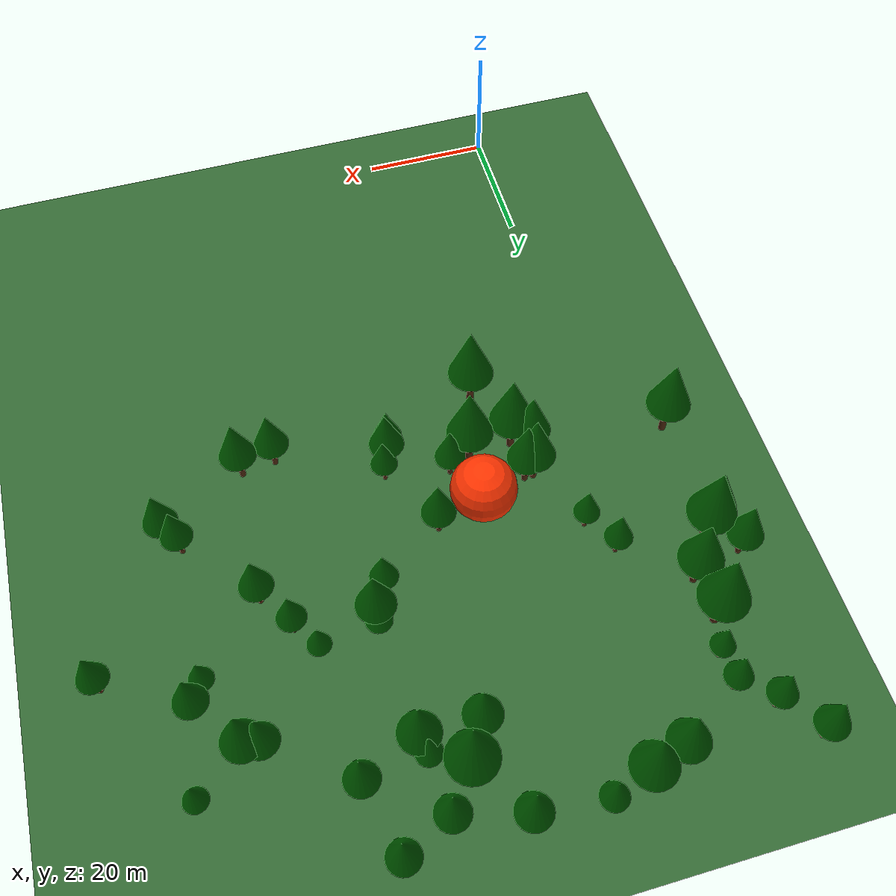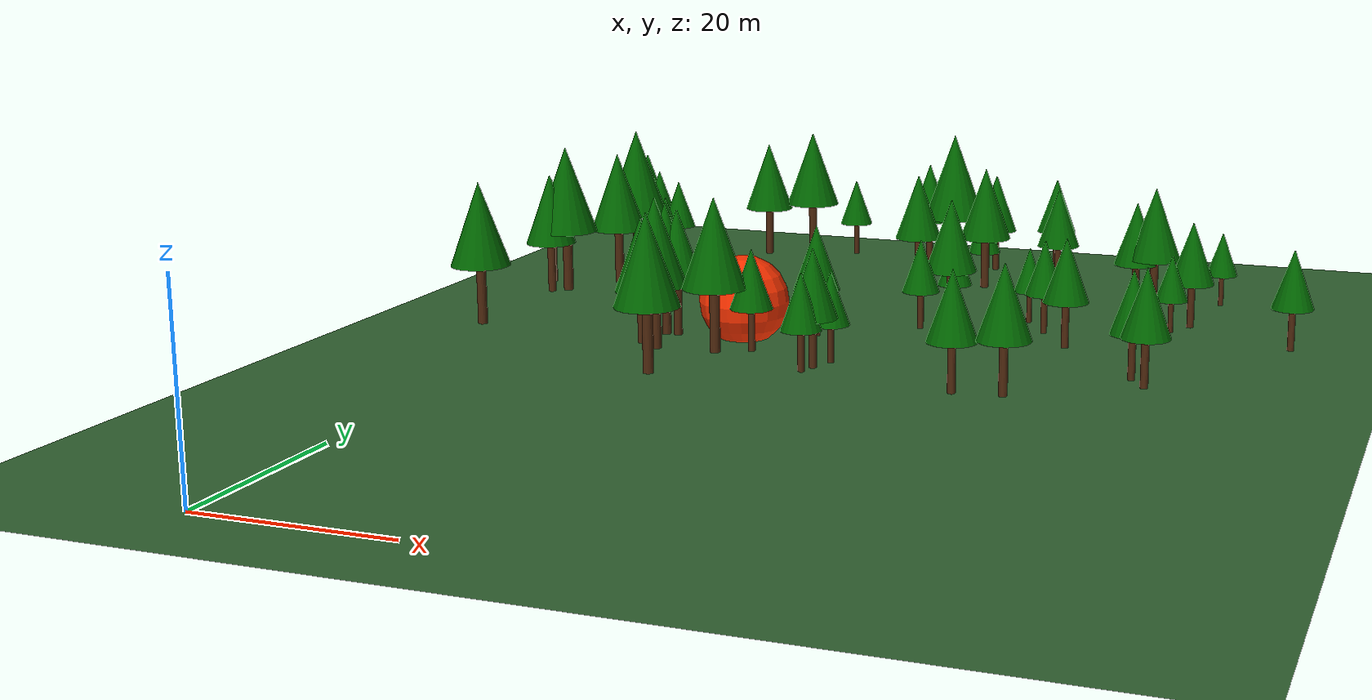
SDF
<sdf version="1.9">
 <world name="Forest_world">
  <model name="ground_plane">
   <static>true</static>
   <link name="link">
    <collision name="collision">
     <geometry><plane><normal>0 0 1</normal><size>500 500</size></plane></geometry>
    </collision>
    <visual name="visual">
     <geometry><plane><normal>0 0 1</normal><size>500 500</size></plane></geometry>
     <material><ambient>0.2 0.4 0.2 1</ambient><diffuse>0.2 0.4 0.2 1</diffuse></material>
    </visual>
   </link>
  </model>
  <model name="tree_0">
   <static>true</static>
   <pose>-8.42 110.98 0 0 0 0</pose>
   <link name="link">
    <collision name="trunk_col">
     <pose>0 0 2.21 0 0 0</pose>
     <geometry><cylinder><radius>0.35</radius><length>4.43</length></cylinder></geometry>
    </collision>
    <visual name="trunk_vis">
     <pose>0 0 2.21 0 0 0</pose>
     <geometry><cylinder><radius>0.35</radius><length>4.43</length></cylinder></geometry>
     <material><ambient>0.3 0.15 0.05 1</ambient><diffuse>0.3 0.15 0.05 1</diffuse></material>
    </visual>
    <collision name="leaves_col">
     <pose>0 0 7.53 0 0 0</pose>
     <geometry><cone><radius>2.21</radius><length>6.20</length></cone></geometry>
    </collision>
    <visual name="leaves_vis">
     <pose>0 0 7.53 0 0 0</pose>
     <geometry><cone><radius>2.21</radius><length>6.20</length></cone></geometry>
     <material><ambient>0.0 0.4 0.0 1</ambient><diffuse>0.0 0.4 0.0 1</diffuse></material>
    </visual>
   </link>
  </model>
  <model name="tree_1">
   <static>true</static>
   <pose>58.30 98.68 0 0 0 0</pose>
   <link name="link">
    <collision name="trunk_col">
     <pose>0 0 2.60 0 0 0</pose>
     <geometry><cylinder><radius>0.42</radius><length>5.20</length></cylinder></geometry>
    </collision>
    <visual name="trunk_vis">
     <pose>0 0 2.60 0 0 0</pose>
     <geometry><cylinder><radius>0.42</radius><length>5.20</length></cylinder></geometry>
     <material><ambient>0.3 0.15 0.05 1</ambient><diffuse>0.3 0.15 0.05 1</diffuse></material>
    </visual>
    <collision name="leaves_col">
     <pose>0 0 8.83 0 0 0</pose>
     <geometry><cone><radius>2.60</radius><length>7.27</length></cone></geometry>
    </collision>
    <visual name="leaves_vis">
     <pose>0 0 8.83 0 0 0</pose>
     <geometry><cone><radius>2.60</radius><length>7.27</length></cone></geometry>
     <material><ambient>0.0 0.4 0.0 1</ambient><diffuse>0.0 0.4 0.0 1</diffuse></material>
    </visual>
   </link>
  </model>
  <model name="tree_4">
   <static>true</static>
   <pose>4.24 83.53 0 0 0 0</pose>
   <link name="link">
    <collision name="trunk_col">
     <pose>0 0 2.11 0 0 0</pose>
     <geometry><cylinder><radius>0.34</radius><length>4.22</length></cylinder></geometry>
    </collision>
    <visual name="trunk_vis">
     <pose>0 0 2.11 0 0 0</pose>
     <geometry><cylinder><radius>0.34</radius><length>4.22</length></cylinder></geometry>
     <material><ambient>0.3 0.15 0.05 1</ambient><diffuse>0.3 0.15 0.05 1</diffuse></material>
    </visual>
    <collision name="leaves_col">
     <pose>0 0 7.18 0 0 0</pose>
     <geometry><cone><radius>2.11</radius><length>5.91</length></cone></geometry>
    </collision>
    <visual name="leaves_vis">
     <pose>0 0 7.18 0 0 0</pose>
     <geometry><cone><radius>2.11</radius><length>5.91</length></cone></geometry>
     <material><ambient>0.0 0.4 0.0 1</ambient><diffuse>0.0 0.4 0.0 1</diffuse></material>
    </visual>
   </link>
  </model>
  <model name="tree_7">
   <static>true</static>
   <pose>-5.32 97.40 0 0 0 0</pose>
   <link name="link">
    <collision name="trunk_col">
     <pose>0 0 3.75 0 0 0</pose>
     <geometry><cylinder><radius>0.60</radius><length>7.50</length></cylinder></geometry>
    </collision>
    <visual name="trunk_vis">
     <pose>0 0 3.75 0 0 0</pose>
     <geometry><cylinder><radius>0.60</radius><length>7.50</length></cylinder></geometry>
     <material><ambient>0.3 0.15 0.05 1</ambient><diffuse>0.3 0.15 0.05 1</diffuse></material>
    </visual>
    <collision name="leaves_col">
     <pose>0 0 12.75 0 0 0</pose>
     <geometry><cone><radius>3.75</radius><length>10.50</length></cone></geometry>
    </collision>
    <visual name="leaves_vis">
     <pose>0 0 12.75 0 0 0</pose>
     <geometry><cone><radius>3.75</radius><length>10.50</length></cone></geometry>
     <material><ambient>0.0 0.4 0.0 1</ambient><diffuse>0.0 0.4 0.0 1</diffuse></material>
    </visual>
   </link>
  </model>
  <model name="tree_10">
   <static>true</static>
   <pose>51.21 82.89 0 0 0 0</pose>
   <link name="link">
    <collision name="trunk_col">
     <pose>0 0 2.19 0 0 0</pose>
     <geometry><cylinder><radius>0.35</radius><length>4.38</length></cylinder></geometry>
    </collision>
    <visual name="trunk_vis">
     <pose>0 0 2.19 0 0 0</pose>
     <geometry><cylinder><radius>0.35</radius><length>4.38</length></cylinder></geometry>
     <material><ambient>0.3 0.15 0.05 1</ambient><diffuse>0.3 0.15 0.05 1</diffuse></material>
    </visual>
    <collision name="leaves_col">
     <pose>0 0 7.45 0 0 0</pose>
     <geometry><cone><radius>2.19</radius><length>6.14</length></cone></geometry>
    </collision>
    <visual name="leaves_vis">
     <pose>0 0 7.45 0 0 0</pose>
     <geometry><cone><radius>2.19</radius><length>6.14</length></cone></geometry>
     <material><ambient>0.0 0.4 0.0 1</ambient><diffuse>0.0 0.4 0.0 1</diffuse></material>
    </visual>
   </link>
  </model>
  <model name="tree_19">
   <static>true</static>
   <pose>-3.94 107.13 0 0 0 0</pose>
   <link name="link">
    <collision name="trunk_col">
     <pose>0 0 2.10 0 0 0</pose>
     <geometry><cylinder><radius>0.34</radius><length>4.20</length></cylinder></geometry>
    </collision>
    <visual name="trunk_vis">
     <pose>0 0 2.10 0 0 0</pose>
     <geometry><cylinder><radius>0.34</radius><length>4.20</length></cylinder></geometry>
     <material><ambient>0.3 0.15 0.05 1</ambient><diffuse>0.3 0.15 0.05 1</diffuse></material>
    </visual>
    <collision name="leaves_col">
     <pose>0 0 7.14 0 0 0</pose>
     <geometry><cone><radius>2.10</radius><length>5.88</length></cone></geometry>
    </collision>
    <visual name="leaves_vis">
     <pose>0 0 7.14 0 0 0</pose>
     <geometry><cone><radius>2.10</radius><length>5.88</length></cone></geometry>
     <material><ambient>0.0 0.4 0.0 1</ambient><diffuse>0.0 0.4 0.0 1</diffuse></material>
    </visual>
   </link>
  </model>
  <model name="tree_21">
   <static>true</static>
   <pose>38.01 105.65 0 0 0 0</pose>
   <link name="link">
    <collision name="trunk_col">
     <pose>0 0 1.95 0 0 0</pose>
     <geometry><cylinder><radius>0.31</radius><length>3.90</length></cylinder></geometry>
    </collision>
    <visual name="trunk_vis">
     <pose>0 0 1.95 0 0 0</pose>
     <geometry><cylinder><radius>0.31</radius><length>3.90</length></cylinder></geometry>
     <material><ambient>0.3 0.15 0.05 1</ambient><diffuse>0.3 0.15 0.05 1</diffuse></material>
    </visual>
    <collision name="leaves_col">
     <pose>0 0 6.62 0 0 0</pose>
     <geometry><cone><radius>1.95</radius><length>5.45</length></cone></geometry>
    </collision>
    <visual name="leaves_vis">
     <pose>0 0 6.62 0 0 0</pose>
     <geometry><cone><radius>1.95</radius><length>5.45</length></cone></geometry>
     <material><ambient>0.0 0.4 0.0 1</ambient><diffuse>0.0 0.4 0.0 1</diffuse></material>
    </visual>
   </link>
  </model>
  <model name="tree_22">
   <static>true</static>
   <pose>23.62 64.46 0 0 0 0</pose>
   <link name="link">
    <collision name="trunk_col">
     <pose>0 0 2.33 0 0 0</pose>
     <geometry><cylinder><radius>0.37</radius><length>4.66</length></cylinder></geometry>
    </collision>
    <visual name="trunk_vis">
     <pose>0 0 2.33 0 0 0</pose>
     <geometry><cylinder><radius>0.37</radius><length>4.66</length></cylinder></geometry>
     <material><ambient>0.3 0.15 0.05 1</ambient><diffuse>0.3 0.15 0.05 1</diffuse></material>
    </visual>
    <collision name="leaves_col">
     <pose>0 0 7.92 0 0 0</pose>
     <geometry><cone><radius>2.33</radius><length>6.52</length></cone></geometry>
    </collision>
    <visual name="leaves_vis">
     <pose>0 0 7.92 0 0 0</pose>
     <geometry><cone><radius>2.33</radius><length>6.52</length></cone></geometry>
     <material><ambient>0.0 0.4 0.0 1</ambient><diffuse>0.0 0.4 0.0 1</diffuse></material>
    </visual>
   </link>
  </model>
  <model name="tree_39">
   <static>true</static>
   <pose>13.44 62.15 0 0 0 0</pose>
   <link name="link">
    <collision name="trunk_col">
     <pose>0 0 3.45 0 0 0</pose>
     <geometry><cylinder><radius>0.55</radius><length>6.89</length></cylinder></geometry>
    </collision>
    <visual name="trunk_vis">
     <pose>0 0 3.45 0 0 0</pose>
     <geometry><cylinder><radius>0.55</radius><length>6.89</length></cylinder></geometry>
     <material><ambient>0.3 0.15 0.05 1</ambient><diffuse>0.3 0.15 0.05 1</diffuse></material>
    </visual>
    <collision name="leaves_col">
     <pose>0 0 11.72 0 0 0</pose>
     <geometry><cone><radius>3.45</radius><length>9.65</length></cone></geometry>
    </collision>
    <visual name="leaves_vis">
     <pose>0 0 11.72 0 0 0</pose>
     <geometry><cone><radius>3.45</radius><length>9.65</length></cone></geometry>
     <material><ambient>0.0 0.4 0.0 1</ambient><diffuse>0.0 0.4 0.0 1</diffuse></material>
    </visual>
   </link>
  </model>
  <model name="tree_44">
   <static>true</static>
   <pose>13.16 68.52 0 0 0 0</pose>
   <link name="link">
    <collision name="trunk_col">
     <pose>0 0 2.95 0 0 0</pose>
     <geometry><cylinder><radius>0.47</radius><length>5.90</length></cylinder></geometry>
    </collision>
    <visual name="trunk_vis">
     <pose>0 0 2.95 0 0 0</pose>
     <geometry><cylinder><radius>0.47</radius><length>5.90</length></cylinder></geometry>
     <material><ambient>0.3 0.15 0.05 1</ambient><diffuse>0.3 0.15 0.05 1</diffuse></material>
    </visual>
    <collision name="leaves_col">
     <pose>0 0 10.02 0 0 0</pose>
     <geometry><cone><radius>2.95</radius><length>8.25</length></cone></geometry>
    </collision>
    <visual name="leaves_vis">
     <pose>0 0 10.02 0 0 0</pose>
     <geometry><cone><radius>2.95</radius><length>8.25</length></cone></geometry>
     <material><ambient>0.0 0.4 0.0 1</ambient><diffuse>0.0 0.4 0.0 1</diffuse></material>
    </visual>
   </link>
  </model>
  <model name="tree_48">
   <static>true</static>
   <pose>-10.31 83.46 0 0 0 0</pose>
   <link name="link">
    <collision name="trunk_col">
     <pose>0 0 2.98 0 0 0</pose>
     <geometry><cylinder><radius>0.48</radius><length>5.96</length></cylinder></geometry>
    </collision>
    <visual name="trunk_vis">
     <pose>0 0 2.98 0 0 0</pose>
     <geometry><cylinder><radius>0.48</radius><length>5.96</length></cylinder></geometry>
     <material><ambient>0.3 0.15 0.05 1</ambient><diffuse>0.3 0.15 0.05 1</diffuse></material>
    </visual>
    <collision name="leaves_col">
     <pose>0 0 10.13 0 0 0</pose>
     <geometry><cone><radius>2.98</radius><length>8.34</length></cone></geometry>
    </collision>
    <visual name="leaves_vis">
     <pose>0 0 10.13 0 0 0</pose>
     <geometry><cone><radius>2.98</radius><length>8.34</length></cone></geometry>
     <material><ambient>0.0 0.4 0.0 1</ambient><diffuse>0.0 0.4 0.0 1</diffuse></material>
    </visual>
   </link>
  </model>
  <model name="tree_56">
   <static>true</static>
   <pose>33.25 62.71 0 0 0 0</pose>
   <link name="link">
    <collision name="trunk_col">
     <pose>0 0 2.04 0 0 0</pose>
     <geometry><cylinder><radius>0.33</radius><length>4.08</length></cylinder></geometry>
    </collision>
    <visual name="trunk_vis">
     <pose>0 0 2.04 0 0 0</pose>
     <geometry><cylinder><radius>0.33</radius><length>4.08</length></cylinder></geometry>
     <material><ambient>0.3 0.15 0.05 1</ambient><diffuse>0.3 0.15 0.05 1</diffuse></material>
    </visual>
    <collision name="leaves_col">
     <pose>0 0 6.94 0 0 0</pose>
     <geometry><cone><radius>2.04</radius><length>5.72</length></cone></geometry>
    </collision>
    <visual name="leaves_vis">
     <pose>0 0 6.94 0 0 0</pose>
     <geometry><cone><radius>2.04</radius><length>5.72</length></cone></geometry>
     <material><ambient>0.0 0.4 0.0 1</ambient><diffuse>0.0 0.4 0.0 1</diffuse></material>
    </visual>
   </link>
  </model>
  <model name="tree_61">
   <static>true</static>
   <pose>30.18 103.29 0 0 0 0</pose>
   <link name="link">
    <collision name="trunk_col">
     <pose>0 0 2.80 0 0 0</pose>
     <geometry><cylinder><radius>0.45</radius><length>5.60</length></cylinder></geometry>
    </collision>
    <visual name="trunk_vis">
     <pose>0 0 2.80 0 0 0</pose>
     <geometry><cylinder><radius>0.45</radius><length>5.60</length></cylinder></geometry>
     <material><ambient>0.3 0.15 0.05 1</ambient><diffuse>0.3 0.15 0.05 1</diffuse></material>
    </visual>
    <collision name="leaves_col">
     <pose>0 0 9.52 0 0 0</pose>
     <geometry><cone><radius>2.80</radius><length>7.84</length></cone></geometry>
    </collision>
    <visual name="leaves_vis">
     <pose>0 0 9.52 0 0 0</pose>
     <geometry><cone><radius>2.80</radius><length>7.84</length></cone></geometry>
     <material><ambient>0.0 0.4 0.0 1</ambient><diffuse>0.0 0.4 0.0 1</diffuse></material>
    </visual>
   </link>
  </model>
  <model name="tree_64">
   <static>true</static>
   <pose>47.05 106.88 0 0 0 0</pose>
   <link name="link">
    <collision name="trunk_col">
     <pose>0 0 2.53 0 0 0</pose>
     <geometry><cylinder><radius>0.40</radius><length>5.06</length></cylinder></geometry>
    </collision>
    <visual name="trunk_vis">
     <pose>0 0 2.53 0 0 0</pose>
     <geometry><cylinder><radius>0.40</radius><length>5.06</length></cylinder></geometry>
     <material><ambient>0.3 0.15 0.05 1</ambient><diffuse>0.3 0.15 0.05 1</diffuse></material>
    </visual>
    <collision name="leaves_col">
     <pose>0 0 8.60 0 0 0</pose>
     <geometry><cone><radius>2.53</radius><length>7.09</length></cone></geometry>
    </collision>
    <visual name="leaves_vis">
     <pose>0 0 8.60 0 0 0</pose>
     <geometry><cone><radius>2.53</radius><length>7.09</length></cone></geometry>
     <material><ambient>0.0 0.4 0.0 1</ambient><diffuse>0.0 0.4 0.0 1</diffuse></material>
    </visual>
   </link>
  </model>
  <model name="tree_68">
   <static>true</static>
   <pose>54.92 77.26 0 0 0 0</pose>
   <link name="link">
    <collision name="trunk_col">
     <pose>0 0 2.51 0 0 0</pose>
     <geometry><cylinder><radius>0.40</radius><length>5.03</length></cylinder></geometry>
    </collision>
    <visual name="trunk_vis">
     <pose>0 0 2.51 0 0 0</pose>
     <geometry><cylinder><radius>0.40</radius><length>5.03</length></cylinder></geometry>
     <material><ambient>0.3 0.15 0.05 1</ambient><diffuse>0.3 0.15 0.05 1</diffuse></material>
    </visual>
    <collision name="leaves_col">
     <pose>0 0 8.55 0 0 0</pose>
     <geometry><cone><radius>2.51</radius><length>7.04</length></cone></geometry>
    </collision>
    <visual name="leaves_vis">
     <pose>0 0 8.55 0 0 0</pose>
     <geometry><cone><radius>2.51</radius><length>7.04</length></cone></geometry>
     <material><ambient>0.0 0.4 0.0 1</ambient><diffuse>0.0 0.4 0.0 1</diffuse></material>
    </visual>
   </link>
  </model>
  <model name="tree_70">
   <static>true</static>
   <pose>27.81 73.24 0 0 0 0</pose>
   <link name="link">
    <collision name="trunk_col">
     <pose>0 0 2.59 0 0 0</pose>
     <geometry><cylinder><radius>0.41</radius><length>5.17</length></cylinder></geometry>
    </collision>
    <visual name="trunk_vis">
     <pose>0 0 2.59 0 0 0</pose>
     <geometry><cylinder><radius>0.41</radius><length>5.17</length></cylinder></geometry>
     <material><ambient>0.3 0.15 0.05 1</ambient><diffuse>0.3 0.15 0.05 1</diffuse></material>
    </visual>
    <collision name="leaves_col">
     <pose>0 0 8.80 0 0 0</pose>
     <geometry><cone><radius>2.59</radius><length>7.24</length></cone></geometry>
    </collision>
    <visual name="leaves_vis">
     <pose>0 0 8.80 0 0 0</pose>
     <geometry><cone><radius>2.59</radius><length>7.24</length></cone></geometry>
     <material><ambient>0.0 0.4 0.0 1</ambient><diffuse>0.0 0.4 0.0 1</diffuse></material>
    </visual>
   </link>
  </model>
  <model name="tree_74">
   <static>true</static>
   <pose>-8.83 84.86 0 0 0 0</pose>
   <link name="link">
    <collision name="trunk_col">
     <pose>0 0 3.65 0 0 0</pose>
     <geometry><cylinder><radius>0.58</radius><length>7.30</length></cylinder></geometry>
    </collision>
    <visual name="trunk_vis">
     <pose>0 0 3.65 0 0 0</pose>
     <geometry><cylinder><radius>0.58</radius><length>7.30</length></cylinder></geometry>
     <material><ambient>0.3 0.15 0.05 1</ambient><diffuse>0.3 0.15 0.05 1</diffuse></material>
    </visual>
    <collision name="leaves_col">
     <pose>0 0 12.42 0 0 0</pose>
     <geometry><cone><radius>3.65</radius><length>10.23</length></cone></geometry>
    </collision>
    <visual name="leaves_vis">
     <pose>0 0 12.42 0 0 0</pose>
     <geometry><cone><radius>3.65</radius><length>10.23</length></cone></geometry>
     <material><ambient>0.0 0.4 0.0 1</ambient><diffuse>0.0 0.4 0.0 1</diffuse></material>
    </visual>
   </link>
  </model>
  <model name="tree_89">
   <static>true</static>
   <pose>67.62 103.32 0 0 0 0</pose>
   <link name="link">
    <collision name="trunk_col">
     <pose>0 0 1.80 0 0 0</pose>
     <geometry><cylinder><radius>0.29</radius><length>3.61</length></cylinder></geometry>
    </collision>
    <visual name="trunk_vis">
     <pose>0 0 1.80 0 0 0</pose>
     <geometry><cylinder><radius>0.29</radius><length>3.61</length></cylinder></geometry>
     <material><ambient>0.3 0.15 0.05 1</ambient><diffuse>0.3 0.15 0.05 1</diffuse></material>
    </visual>
    <collision name="leaves_col">
     <pose>0 0 6.14 0 0 0</pose>
     <geometry><cone><radius>1.80</radius><length>5.05</length></cone></geometry>
    </collision>
    <visual name="leaves_vis">
     <pose>0 0 6.14 0 0 0</pose>
     <geometry><cone><radius>1.80</radius><length>5.05</length></cone></geometry>
     <material><ambient>0.0 0.4 0.0 1</ambient><diffuse>0.0 0.4 0.0 1</diffuse></material>
    </visual>
   </link>
  </model>
  <model name="tree_96">
   <static>true</static>
   <pose>31.62 58.24 0 0 0 0</pose>
   <link name="link">
    <collision name="trunk_col">
     <pose>0 0 2.18 0 0 0</pose>
     <geometry><cylinder><radius>0.35</radius><length>4.37</length></cylinder></geometry>
    </collision>
    <visual name="trunk_vis">
     <pose>0 0 2.18 0 0 0</pose>
     <geometry><cylinder><radius>0.35</radius><length>4.37</length></cylinder></geometry>
     <material><ambient>0.3 0.15 0.05 1</ambient><diffuse>0.3 0.15 0.05 1</diffuse></material>
    </visual>
    <collision name="leaves_col">
     <pose>0 0 7.43 0 0 0</pose>
     <geometry><cone><radius>2.18</radius><length>6.12</length></cone></geometry>
    </collision>
    <visual name="leaves_vis">
     <pose>0 0 7.43 0 0 0</pose>
     <geometry><cone><radius>2.18</radius><length>6.12</length></cone></geometry>
     <material><ambient>0.0 0.4 0.0 1</ambient><diffuse>0.0 0.4 0.0 1</diffuse></material>
    </visual>
   </link>
  </model>
  <model name="tree_99">
   <static>true</static>
   <pose>37.64 80.34 0 0 0 0</pose>
   <link name="link">
    <collision name="trunk_col">
     <pose>0 0 2.11 0 0 0</pose>
     <geometry><cylinder><radius>0.34</radius><length>4.23</length></cylinder></geometry>
    </collision>
    <visual name="trunk_vis">
     <pose>0 0 2.11 0 0 0</pose>
     <geometry><cylinder><radius>0.34</radius><length>4.23</length></cylinder></geometry>
     <material><ambient>0.3 0.15 0.05 1</ambient><diffuse>0.3 0.15 0.05 1</diffuse></material>
    </visual>
    <collision name="leaves_col">
     <pose>0 0 7.19 0 0 0</pose>
     <geometry><cone><radius>2.11</radius><length>5.92</length></cone></geometry>
    </collision>
    <visual name="leaves_vis">
     <pose>0 0 7.19 0 0 0</pose>
     <geometry><cone><radius>2.11</radius><length>5.92</length></cone></geometry>
     <material><ambient>0.0 0.4 0.0 1</ambient><diffuse>0.0 0.4 0.0 1</diffuse></material>
    </visual>
   </link>
  </model>
  <model name="tree_100">
   <static>true</static>
   <pose>-12.72 116.53 0 0 0 0</pose>
   <link name="link">
    <collision name="trunk_col">
     <pose>0 0 2.48 0 0 0</pose>
     <geometry><cylinder><radius>0.40</radius><length>4.95</length></cylinder></geometry>
    </collision>
    <visual name="trunk_vis">
     <pose>0 0 2.48 0 0 0</pose>
     <geometry><cylinder><radius>0.40</radius><length>4.95</length></cylinder></geometry>
     <material><ambient>0.3 0.15 0.05 1</ambient><diffuse>0.3 0.15 0.05 1</diffuse></material>
    </visual>
    <collision name="leaves_col">
     <pose>0 0 8.42 0 0 0</pose>
     <geometry><cone><radius>2.48</radius><length>6.93</length></cone></geometry>
    </collision>
    <visual name="leaves_vis">
     <pose>0 0 8.42 0 0 0</pose>
     <geometry><cone><radius>2.48</radius><length>6.93</length></cone></geometry>
     <material><ambient>0.0 0.4 0.0 1</ambient><diffuse>0.0 0.4 0.0 1</diffuse></material>
    </visual>
   </link>
  </model>
  <model name="tree_102">
   <static>true</static>
   <pose>66.12 91.06 0 0 0 0</pose>
   <link name="link">
    <collision name="trunk_col">
     <pose>0 0 2.51 0 0 0</pose>
     <geometry><cylinder><radius>0.40</radius><length>5.02</length></cylinder></geometry>
    </collision>
    <visual name="trunk_vis">
     <pose>0 0 2.51 0 0 0</pose>
     <geometry><cylinder><radius>0.40</radius><length>5.02</length></cylinder></geometry>
     <material><ambient>0.3 0.15 0.05 1</ambient><diffuse>0.3 0.15 0.05 1</diffuse></material>
    </visual>
    <collision name="leaves_col">
     <pose>0 0 8.53 0 0 0</pose>
     <geometry><cone><radius>2.51</radius><length>7.03</length></cone></geometry>
    </collision>
    <visual name="leaves_vis">
     <pose>0 0 8.53 0 0 0</pose>
     <geometry><cone><radius>2.51</radius><length>7.03</length></cone></geometry>
     <material><ambient>0.0 0.4 0.0 1</ambient><diffuse>0.0 0.4 0.0 1</diffuse></material>
    </visual>
   </link>
  </model>
  <model name="tree_103">
   <static>true</static>
   <pose>-4.83 90.92 0 0 0 0</pose>
   <link name="link">
    <collision name="trunk_col">
     <pose>0 0 3.33 0 0 0</pose>
     <geometry><cylinder><radius>0.53</radius><length>6.67</length></cylinder></geometry>
    </collision>
    <visual name="trunk_vis">
     <pose>0 0 3.33 0 0 0</pose>
     <geometry><cylinder><radius>0.53</radius><length>6.67</length></cylinder></geometry>
     <material><ambient>0.3 0.15 0.05 1</ambient><diffuse>0.3 0.15 0.05 1</diffuse></material>
    </visual>
    <collision name="leaves_col">
     <pose>0 0 11.34 0 0 0</pose>
     <geometry><cone><radius>3.33</radius><length>9.33</length></cone></geometry>
    </collision>
    <visual name="leaves_vis">
     <pose>0 0 11.34 0 0 0</pose>
     <geometry><cone><radius>3.33</radius><length>9.33</length></cone></geometry>
     <material><ambient>0.0 0.4 0.0 1</ambient><diffuse>0.0 0.4 0.0 1</diffuse></material>
    </visual>
   </link>
  </model>
  <model name="tree_120">
   <static>true</static>
   <pose>53.64 56.27 0 0 0 0</pose>
   <link name="link">
    <collision name="trunk_col">
     <pose>0 0 2.81 0 0 0</pose>
     <geometry><cylinder><radius>0.45</radius><length>5.62</length></cylinder></geometry>
    </collision>
    <visual name="trunk_vis">
     <pose>0 0 2.81 0 0 0</pose>
     <geometry><cylinder><radius>0.45</radius><length>5.62</length></cylinder></geometry>
     <material><ambient>0.3 0.15 0.05 1</ambient><diffuse>0.3 0.15 0.05 1</diffuse></material>
    </visual>
    <collision name="leaves_col">
     <pose>0 0 9.56 0 0 0</pose>
     <geometry><cone><radius>2.81</radius><length>7.87</length></cone></geometry>
    </collision>
    <visual name="leaves_vis">
     <pose>0 0 9.56 0 0 0</pose>
     <geometry><cone><radius>2.81</radius><length>7.87</length></cone></geometry>
     <material><ambient>0.0 0.4 0.0 1</ambient><diffuse>0.0 0.4 0.0 1</diffuse></material>
    </visual>
   </link>
  </model>
  <model name="tree_124">
   <static>true</static>
   <pose>66.17 63.89 0 0 0 0</pose>
   <link name="link">
    <collision name="trunk_col">
     <pose>0 0 2.57 0 0 0</pose>
     <geometry><cylinder><radius>0.41</radius><length>5.14</length></cylinder></geometry>
    </collision>
    <visual name="trunk_vis">
     <pose>0 0 2.57 0 0 0</pose>
     <geometry><cylinder><radius>0.41</radius><length>5.14</length></cylinder></geometry>
     <material><ambient>0.3 0.15 0.05 1</ambient><diffuse>0.3 0.15 0.05 1</diffuse></material>
    </visual>
    <collision name="leaves_col">
     <pose>0 0 8.74 0 0 0</pose>
     <geometry><cone><radius>2.57</radius><length>7.20</length></cone></geometry>
    </collision>
    <visual name="leaves_vis">
     <pose>0 0 8.74 0 0 0</pose>
     <geometry><cone><radius>2.57</radius><length>7.20</length></cone></geometry>
     <material><ambient>0.0 0.4 0.0 1</ambient><diffuse>0.0 0.4 0.0 1</diffuse></material>
    </visual>
   </link>
  </model>
  <model name="tree_129">
   <static>true</static>
   <pose>-9.91 65.79 0 0 0 0</pose>
   <link name="link">
    <collision name="trunk_col">
     <pose>0 0 3.38 0 0 0</pose>
     <geometry><cylinder><radius>0.54</radius><length>6.76</length></cylinder></geometry>
    </collision>
    <visual name="trunk_vis">
     <pose>0 0 3.38 0 0 0</pose>
     <geometry><cylinder><radius>0.54</radius><length>6.76</length></cylinder></geometry>
     <material><ambient>0.3 0.15 0.05 1</ambient><diffuse>0.3 0.15 0.05 1</diffuse></material>
    </visual>
    <collision name="leaves_col">
     <pose>0 0 11.48 0 0 0</pose>
     <geometry><cone><radius>3.38</radius><length>9.46</length></cone></geometry>
    </collision>
    <visual name="leaves_vis">
     <pose>0 0 11.48 0 0 0</pose>
     <geometry><cone><radius>3.38</radius><length>9.46</length></cone></geometry>
     <material><ambient>0.0 0.4 0.0 1</ambient><diffuse>0.0 0.4 0.0 1</diffuse></material>
    </visual>
   </link>
  </model>
  <model name="tree_132">
   <static>true</static>
   <pose>27.58 116.69 0 0 0 0</pose>
   <link name="link">
    <collision name="trunk_col">
     <pose>0 0 2.63 0 0 0</pose>
     <geometry><cylinder><radius>0.42</radius><length>5.25</length></cylinder></geometry>
    </collision>
    <visual name="trunk_vis">
     <pose>0 0 2.63 0 0 0</pose>
     <geometry><cylinder><radius>0.42</radius><length>5.25</length></cylinder></geometry>
     <material><ambient>0.3 0.15 0.05 1</ambient><diffuse>0.3 0.15 0.05 1</diffuse></material>
    </visual>
    <collision name="leaves_col">
     <pose>0 0 8.93 0 0 0</pose>
     <geometry><cone><radius>2.63</radius><length>7.35</length></cone></geometry>
    </collision>
    <visual name="leaves_vis">
     <pose>0 0 8.93 0 0 0</pose>
     <geometry><cone><radius>2.63</radius><length>7.35</length></cone></geometry>
     <material><ambient>0.0 0.4 0.0 1</ambient><diffuse>0.0 0.4 0.0 1</diffuse></material>
    </visual>
   </link>
  </model>
  <model name="tree_134">
   <static>true</static>
   <pose>11.64 115.78 0 0 0 0</pose>
   <link name="link">
    <collision name="trunk_col">
     <pose>0 0 3.35 0 0 0</pose>
     <geometry><cylinder><radius>0.54</radius><length>6.70</length></cylinder></geometry>
    </collision>
    <visual name="trunk_vis">
     <pose>0 0 3.35 0 0 0</pose>
     <geometry><cylinder><radius>0.54</radius><length>6.70</length></cylinder></geometry>
     <material><ambient>0.3 0.15 0.05 1</ambient><diffuse>0.3 0.15 0.05 1</diffuse></material>
    </visual>
    <collision name="leaves_col">
     <pose>0 0 11.39 0 0 0</pose>
     <geometry><cone><radius>3.35</radius><length>9.38</length></cone></geometry>
    </collision>
    <visual name="leaves_vis">
     <pose>0 0 11.39 0 0 0</pose>
     <geometry><cone><radius>3.35</radius><length>9.38</length></cone></geometry>
     <material><ambient>0.0 0.4 0.0 1</ambient><diffuse>0.0 0.4 0.0 1</diffuse></material>
    </visual>
   </link>
  </model>
  <model name="tree_141">
   <static>true</static>
   <pose>-12.74 88.54 0 0 0 0</pose>
   <link name="link">
    <collision name="trunk_col">
     <pose>0 0 2.69 0 0 0</pose>
     <geometry><cylinder><radius>0.43</radius><length>5.38</length></cylinder></geometry>
    </collision>
    <visual name="trunk_vis">
     <pose>0 0 2.69 0 0 0</pose>
     <geometry><cylinder><radius>0.43</radius><length>5.38</length></cylinder></geometry>
     <material><ambient>0.3 0.15 0.05 1</ambient><diffuse>0.3 0.15 0.05 1</diffuse></material>
    </visual>
    <collision name="leaves_col">
     <pose>0 0 9.14 0 0 0</pose>
     <geometry><cone><radius>2.69</radius><length>7.53</length></cone></geometry>
    </collision>
    <visual name="leaves_vis">
     <pose>0 0 9.14 0 0 0</pose>
     <geometry><cone><radius>2.69</radius><length>7.53</length></cone></geometry>
     <material><ambient>0.0 0.4 0.0 1</ambient><diffuse>0.0 0.4 0.0 1</diffuse></material>
    </visual>
   </link>
  </model>
  <model name="tree_142">
   <static>true</static>
   <pose>20.10 62.67 0 0 0 0</pose>
   <link name="link">
    <collision name="trunk_col">
     <pose>0 0 3.51 0 0 0</pose>
     <geometry><cylinder><radius>0.56</radius><length>7.02</length></cylinder></geometry>
    </collision>
    <visual name="trunk_vis">
     <pose>0 0 3.51 0 0 0</pose>
     <geometry><cylinder><radius>0.56</radius><length>7.02</length></cylinder></geometry>
     <material><ambient>0.3 0.15 0.05 1</ambient><diffuse>0.3 0.15 0.05 1</diffuse></material>
    </visual>
    <collision name="leaves_col">
     <pose>0 0 11.93 0 0 0</pose>
     <geometry><cone><radius>3.51</radius><length>9.83</length></cone></geometry>
    </collision>
    <visual name="leaves_vis">
     <pose>0 0 11.93 0 0 0</pose>
     <geometry><cone><radius>3.51</radius><length>9.83</length></cone></geometry>
     <material><ambient>0.0 0.4 0.0 1</ambient><diffuse>0.0 0.4 0.0 1</diffuse></material>
    </visual>
   </link>
  </model>
  <model name="tree_144">
   <static>true</static>
   <pose>38.69 103.52 0 0 0 0</pose>
   <link name="link">
    <collision name="trunk_col">
     <pose>0 0 3.05 0 0 0</pose>
     <geometry><cylinder><radius>0.49</radius><length>6.11</length></cylinder></geometry>
    </collision>
    <visual name="trunk_vis">
     <pose>0 0 3.05 0 0 0</pose>
     <geometry><cylinder><radius>0.49</radius><length>6.11</length></cylinder></geometry>
     <material><ambient>0.3 0.15 0.05 1</ambient><diffuse>0.3 0.15 0.05 1</diffuse></material>
    </visual>
    <collision name="leaves_col">
     <pose>0 0 10.38 0 0 0</pose>
     <geometry><cone><radius>3.05</radius><length>8.55</length></cone></geometry>
    </collision>
    <visual name="leaves_vis">
     <pose>0 0 10.38 0 0 0</pose>
     <geometry><cone><radius>3.05</radius><length>8.55</length></cone></geometry>
     <material><ambient>0.0 0.4 0.0 1</ambient><diffuse>0.0 0.4 0.0 1</diffuse></material>
    </visual>
   </link>
  </model>
  <model name="tree_154">
   <static>true</static>
   <pose>48.56 55.52 0 0 0 0</pose>
   <link name="link">
    <collision name="trunk_col">
     <pose>0 0 2.63 0 0 0</pose>
     <geometry><cylinder><radius>0.42</radius><length>5.25</length></cylinder></geometry>
    </collision>
    <visual name="trunk_vis">
     <pose>0 0 2.63 0 0 0</pose>
     <geometry><cylinder><radius>0.42</radius><length>5.25</length></cylinder></geometry>
     <material><ambient>0.3 0.15 0.05 1</ambient><diffuse>0.3 0.15 0.05 1</diffuse></material>
    </visual>
    <collision name="leaves_col">
     <pose>0 0 8.93 0 0 0</pose>
     <geometry><cone><radius>2.63</radius><length>7.35</length></cone></geometry>
    </collision>
    <visual name="leaves_vis">
     <pose>0 0 8.93 0 0 0</pose>
     <geometry><cone><radius>2.63</radius><length>7.35</length></cone></geometry>
     <material><ambient>0.0 0.4 0.0 1</ambient><diffuse>0.0 0.4 0.0 1</diffuse></material>
    </visual>
   </link>
  </model>
  <model name="tree_159">
   <static>true</static>
   <pose>33.19 108.75 0 0 0 0</pose>
   <link name="link">
    <collision name="trunk_col">
     <pose>0 0 3.70 0 0 0</pose>
     <geometry><cylinder><radius>0.59</radius><length>7.41</length></cylinder></geometry>
    </collision>
    <visual name="trunk_vis">
     <pose>0 0 3.70 0 0 0</pose>
     <geometry><cylinder><radius>0.59</radius><length>7.41</length></cylinder></geometry>
     <material><ambient>0.3 0.15 0.05 1</ambient><diffuse>0.3 0.15 0.05 1</diffuse></material>
    </visual>
    <collision name="leaves_col">
     <pose>0 0 12.59 0 0 0</pose>
     <geometry><cone><radius>3.70</radius><length>10.37</length></cone></geometry>
    </collision>
    <visual name="leaves_vis">
     <pose>0 0 12.59 0 0 0</pose>
     <geometry><cone><radius>3.70</radius><length>10.37</length></cone></geometry>
     <material><ambient>0.0 0.4 0.0 1</ambient><diffuse>0.0 0.4 0.0 1</diffuse></material>
    </visual>
   </link>
  </model>
  <model name="tree_167">
   <static>true</static>
   <pose>60.50 98.35 0 0 0 0</pose>
   <link name="link">
    <collision name="trunk_col">
     <pose>0 0 2.99 0 0 0</pose>
     <geometry><cylinder><radius>0.48</radius><length>5.98</length></cylinder></geometry>
    </collision>
    <visual name="trunk_vis">
     <pose>0 0 2.99 0 0 0</pose>
     <geometry><cylinder><radius>0.48</radius><length>5.98</length></cylinder></geometry>
     <material><ambient>0.3 0.15 0.05 1</ambient><diffuse>0.3 0.15 0.05 1</diffuse></material>
    </visual>
    <collision name="leaves_col">
     <pose>0 0 10.17 0 0 0</pose>
     <geometry><cone><radius>2.99</radius><length>8.37</length></cone></geometry>
    </collision>
    <visual name="leaves_vis">
     <pose>0 0 10.17 0 0 0</pose>
     <geometry><cone><radius>2.99</radius><length>8.37</length></cone></geometry>
     <material><ambient>0.0 0.4 0.0 1</ambient><diffuse>0.0 0.4 0.0 1</diffuse></material>
    </visual>
   </link>
  </model>
  <model name="tree_169">
   <static>true</static>
   <pose>10.91 63.89 0 0 0 0</pose>
   <link name="link">
    <collision name="trunk_col">
     <pose>0 0 2.87 0 0 0</pose>
     <geometry><cylinder><radius>0.46</radius><length>5.75</length></cylinder></geometry>
    </collision>
    <visual name="trunk_vis">
     <pose>0 0 2.87 0 0 0</pose>
     <geometry><cylinder><radius>0.46</radius><length>5.75</length></cylinder></geometry>
     <material><ambient>0.3 0.15 0.05 1</ambient><diffuse>0.3 0.15 0.05 1</diffuse></material>
    </visual>
    <collision name="leaves_col">
     <pose>0 0 9.77 0 0 0</pose>
     <geometry><cone><radius>2.87</radius><length>8.04</length></cone></geometry>
    </collision>
    <visual name="leaves_vis">
     <pose>0 0 9.77 0 0 0</pose>
     <geometry><cone><radius>2.87</radius><length>8.04</length></cone></geometry>
     <material><ambient>0.0 0.4 0.0 1</ambient><diffuse>0.0 0.4 0.0 1</diffuse></material>
    </visual>
   </link>
  </model>
  <model name="tree_170">
   <static>true</static>
   <pose>39.83 86.38 0 0 0 0</pose>
   <link name="link">
    <collision name="trunk_col">
     <pose>0 0 1.96 0 0 0</pose>
     <geometry><cylinder><radius>0.31</radius><length>3.92</length></cylinder></geometry>
    </collision>
    <visual name="trunk_vis">
     <pose>0 0 1.96 0 0 0</pose>
     <geometry><cylinder><radius>0.31</radius><length>3.92</length></cylinder></geometry>
     <material><ambient>0.3 0.15 0.05 1</ambient><diffuse>0.3 0.15 0.05 1</diffuse></material>
    </visual>
    <collision name="leaves_col">
     <pose>0 0 6.66 0 0 0</pose>
     <geometry><cone><radius>1.96</radius><length>5.48</length></cone></geometry>
    </collision>
    <visual name="leaves_vis">
     <pose>0 0 6.66 0 0 0</pose>
     <geometry><cone><radius>1.96</radius><length>5.48</length></cone></geometry>
     <material><ambient>0.0 0.4 0.0 1</ambient><diffuse>0.0 0.4 0.0 1</diffuse></material>
    </visual>
   </link>
  </model>
  <model name="tree_171">
   <static>true</static>
   <pose>48.39 87.35 0 0 0 0</pose>
   <link name="link">
    <collision name="trunk_col">
     <pose>0 0 1.78 0 0 0</pose>
     <geometry><cylinder><radius>0.29</radius><length>3.56</length></cylinder></geometry>
    </collision>
    <visual name="trunk_vis">
     <pose>0 0 1.78 0 0 0</pose>
     <geometry><cylinder><radius>0.29</radius><length>3.56</length></cylinder></geometry>
     <material><ambient>0.3 0.15 0.05 1</ambient><diffuse>0.3 0.15 0.05 1</diffuse></material>
    </visual>
    <collision name="leaves_col">
     <pose>0 0 6.06 0 0 0</pose>
     <geometry><cone><radius>1.78</radius><length>4.99</length></cone></geometry>
    </collision>
    <visual name="leaves_vis">
     <pose>0 0 6.06 0 0 0</pose>
     <geometry><cone><radius>1.78</radius><length>4.99</length></cone></geometry>
     <material><ambient>0.0 0.4 0.0 1</ambient><diffuse>0.0 0.4 0.0 1</diffuse></material>
    </visual>
   </link>
  </model>
  <model name="tree_177">
   <static>true</static>
   <pose>7.17 78.38 0 0 0 0</pose>
   <link name="link">
    <collision name="trunk_col">
     <pose>0 0 1.97 0 0 0</pose>
     <geometry><cylinder><radius>0.32</radius><length>3.94</length></cylinder></geometry>
    </collision>
    <visual name="trunk_vis">
     <pose>0 0 1.97 0 0 0</pose>
     <geometry><cylinder><radius>0.32</radius><length>3.94</length></cylinder></geometry>
     <material><ambient>0.3 0.15 0.05 1</ambient><diffuse>0.3 0.15 0.05 1</diffuse></material>
    </visual>
    <collision name="leaves_col">
     <pose>0 0 6.70 0 0 0</pose>
     <geometry><cone><radius>1.97</radius><length>5.52</length></cone></geometry>
    </collision>
    <visual name="leaves_vis">
     <pose>0 0 6.70 0 0 0</pose>
     <geometry><cone><radius>1.97</radius><length>5.52</length></cone></geometry>
     <material><ambient>0.0 0.4 0.0 1</ambient><diffuse>0.0 0.4 0.0 1</diffuse></material>
    </visual>
   </link>
  </model>
  <model name="tree_184">
   <static>true</static>
   <pose>11.83 68.40 0 0 0 0</pose>
   <link name="link">
    <collision name="trunk_col">
     <pose>0 0 3.08 0 0 0</pose>
     <geometry><cylinder><radius>0.49</radius><length>6.16</length></cylinder></geometry>
    </collision>
    <visual name="trunk_vis">
     <pose>0 0 3.08 0 0 0</pose>
     <geometry><cylinder><radius>0.49</radius><length>6.16</length></cylinder></geometry>
     <material><ambient>0.3 0.15 0.05 1</ambient><diffuse>0.3 0.15 0.05 1</diffuse></material>
    </visual>
    <collision name="leaves_col">
     <pose>0 0 10.47 0 0 0</pose>
     <geometry><cone><radius>3.08</radius><length>8.62</length></cone></geometry>
    </collision>
    <visual name="leaves_vis">
     <pose>0 0 10.47 0 0 0</pose>
     <geometry><cone><radius>3.08</radius><length>8.62</length></cone></geometry>
     <material><ambient>0.0 0.4 0.0 1</ambient><diffuse>0.0 0.4 0.0 1</diffuse></material>
    </visual>
   </link>
  </model>
  <model name="tree_187">
   <static>true</static>
   <pose>-3.77 102.45 0 0 0 0</pose>
   <link name="link">
    <collision name="trunk_col">
     <pose>0 0 1.84 0 0 0</pose>
     <geometry><cylinder><radius>0.29</radius><length>3.67</length></cylinder></geometry>
    </collision>
    <visual name="trunk_vis">
     <pose>0 0 1.84 0 0 0</pose>
     <geometry><cylinder><radius>0.29</radius><length>3.67</length></cylinder></geometry>
     <material><ambient>0.3 0.15 0.05 1</ambient><diffuse>0.3 0.15 0.05 1</diffuse></material>
    </visual>
    <collision name="leaves_col">
     <pose>0 0 6.24 0 0 0</pose>
     <geometry><cone><radius>1.84</radius><length>5.14</length></cone></geometry>
    </collision>
    <visual name="leaves_vis">
     <pose>0 0 6.24 0 0 0</pose>
     <geometry><cone><radius>1.84</radius><length>5.14</length></cone></geometry>
     <material><ambient>0.0 0.4 0.0 1</ambient><diffuse>0.0 0.4 0.0 1</diffuse></material>
    </visual>
   </link>
  </model>
  <model name="tree_189">
   <static>true</static>
   <pose>78.08 84.22 0 0 0 0</pose>
   <link name="link">
    <collision name="trunk_col">
     <pose>0 0 2.30 0 0 0</pose>
     <geometry><cylinder><radius>0.37</radius><length>4.61</length></cylinder></geometry>
    </collision>
    <visual name="trunk_vis">
     <pose>0 0 2.30 0 0 0</pose>
     <geometry><cylinder><radius>0.37</radius><length>4.61</length></cylinder></geometry>
     <material><ambient>0.3 0.15 0.05 1</ambient><diffuse>0.3 0.15 0.05 1</diffuse></material>
    </visual>
    <collision name="leaves_col">
     <pose>0 0 7.83 0 0 0</pose>
     <geometry><cone><radius>2.30</radius><length>6.45</length></cone></geometry>
    </collision>
    <visual name="leaves_vis">
     <pose>0 0 7.83 0 0 0</pose>
     <geometry><cone><radius>2.30</radius><length>6.45</length></cone></geometry>
     <material><ambient>0.0 0.4 0.0 1</ambient><diffuse>0.0 0.4 0.0 1</diffuse></material>
    </visual>
   </link>
  </model>
  <model name="tree_197">
   <static>true</static>
   <pose>17.19 117.42 0 0 0 0</pose>
   <link name="link">
    <collision name="trunk_col">
     <pose>0 0 2.05 0 0 0</pose>
     <geometry><cylinder><radius>0.33</radius><length>4.09</length></cylinder></geometry>
    </collision>
    <visual name="trunk_vis">
     <pose>0 0 2.05 0 0 0</pose>
     <geometry><cylinder><radius>0.33</radius><length>4.09</length></cylinder></geometry>
     <material><ambient>0.3 0.15 0.05 1</ambient><diffuse>0.3 0.15 0.05 1</diffuse></material>
    </visual>
    <collision name="leaves_col">
     <pose>0 0 6.96 0 0 0</pose>
     <geometry><cone><radius>2.05</radius><length>5.73</length></cone></geometry>
    </collision>
    <visual name="leaves_vis">
     <pose>0 0 6.96 0 0 0</pose>
     <geometry><cone><radius>2.05</radius><length>5.73</length></cone></geometry>
     <material><ambient>0.0 0.4 0.0 1</ambient><diffuse>0.0 0.4 0.0 1</diffuse></material>
    </visual>
   </link>
  </model>
  <model name="tree_203">
   <static>true</static>
   <pose>64.44 87.88 0 0 0 0</pose>
   <link name="link">
    <collision name="trunk_col">
     <pose>0 0 1.83 0 0 0</pose>
     <geometry><cylinder><radius>0.29</radius><length>3.65</length></cylinder></geometry>
    </collision>
    <visual name="trunk_vis">
     <pose>0 0 1.83 0 0 0</pose>
     <geometry><cylinder><radius>0.29</radius><length>3.65</length></cylinder></geometry>
     <material><ambient>0.3 0.15 0.05 1</ambient><diffuse>0.3 0.15 0.05 1</diffuse></material>
    </visual>
    <collision name="leaves_col">
     <pose>0 0 6.21 0 0 0</pose>
     <geometry><cone><radius>1.83</radius><length>5.11</length></cone></geometry>
    </collision>
    <visual name="leaves_vis">
     <pose>0 0 6.21 0 0 0</pose>
     <geometry><cone><radius>1.83</radius><length>5.11</length></cone></geometry>
     <material><ambient>0.0 0.4 0.0 1</ambient><diffuse>0.0 0.4 0.0 1</diffuse></material>
    </visual>
   </link>
  </model>
  <model name="tree_216">
   <static>true</static>
   <pose>6.18 113.89 0 0 0 0</pose>
   <link name="link">
    <collision name="trunk_col">
     <pose>0 0 3.03 0 0 0</pose>
     <geometry><cylinder><radius>0.48</radius><length>6.06</length></cylinder></geometry>
    </collision>
    <visual name="trunk_vis">
     <pose>0 0 3.03 0 0 0</pose>
     <geometry><cylinder><radius>0.48</radius><length>6.06</length></cylinder></geometry>
     <material><ambient>0.3 0.15 0.05 1</ambient><diffuse>0.3 0.15 0.05 1</diffuse></material>
    </visual>
    <collision name="leaves_col">
     <pose>0 0 10.30 0 0 0</pose>
     <geometry><cone><radius>3.03</radius><length>8.48</length></cone></geometry>
    </collision>
    <visual name="leaves_vis">
     <pose>0 0 10.30 0 0 0</pose>
     <geometry><cone><radius>3.03</radius><length>8.48</length></cone></geometry>
     <material><ambient>0.0 0.4 0.0 1</ambient><diffuse>0.0 0.4 0.0 1</diffuse></material>
    </visual>
   </link>
  </model>
  <model name="tree_222">
   <static>true</static>
   <pose>64.34 66.56 0 0 0 0</pose>
   <link name="link">
    <collision name="trunk_col">
     <pose>0 0 2.38 0 0 0</pose>
     <geometry><cylinder><radius>0.38</radius><length>4.76</length></cylinder></geometry>
    </collision>
    <visual name="trunk_vis">
     <pose>0 0 2.38 0 0 0</pose>
     <geometry><cylinder><radius>0.38</radius><length>4.76</length></cylinder></geometry>
     <material><ambient>0.3 0.15 0.05 1</ambient><diffuse>0.3 0.15 0.05 1</diffuse></material>
    </visual>
    <collision name="leaves_col">
     <pose>0 0 8.10 0 0 0</pose>
     <geometry><cone><radius>2.38</radius><length>6.67</length></cone></geometry>
    </collision>
    <visual name="leaves_vis">
     <pose>0 0 8.10 0 0 0</pose>
     <geometry><cone><radius>2.38</radius><length>6.67</length></cone></geometry>
     <material><ambient>0.0 0.4 0.0 1</ambient><diffuse>0.0 0.4 0.0 1</diffuse></material>
    </visual>
   </link>
  </model>
  <model name="tree_225">
   <static>true</static>
   <pose>16.99 52.45 0 0 0 0</pose>
   <link name="link">
    <collision name="trunk_col">
     <pose>0 0 3.50 0 0 0</pose>
     <geometry><cylinder><radius>0.56</radius><length>6.99</length></cylinder></geometry>
    </collision>
    <visual name="trunk_vis">
     <pose>0 0 3.50 0 0 0</pose>
     <geometry><cylinder><radius>0.56</radius><length>6.99</length></cylinder></geometry>
     <material><ambient>0.3 0.15 0.05 1</ambient><diffuse>0.3 0.15 0.05 1</diffuse></material>
    </visual>
    <collision name="leaves_col">
     <pose>0 0 11.89 0 0 0</pose>
     <geometry><cone><radius>3.50</radius><length>9.79</length></cone></geometry>
    </collision>
    <visual name="leaves_vis">
     <pose>0 0 11.89 0 0 0</pose>
     <geometry><cone><radius>3.50</radius><length>9.79</length></cone></geometry>
     <material><ambient>0.0 0.4 0.0 1</ambient><diffuse>0.0 0.4 0.0 1</diffuse></material>
    </visual>
   </link>
  </model>
  <model name="tree_228">
   <static>true</static>
   <pose>32.19 60.20 0 0 0 0</pose>
   <link name="link">
    <collision name="trunk_col">
     <pose>0 0 2.64 0 0 0</pose>
     <geometry><cylinder><radius>0.42</radius><length>5.29</length></cylinder></geometry>
    </collision>
    <visual name="trunk_vis">
     <pose>0 0 2.64 0 0 0</pose>
     <geometry><cylinder><radius>0.42</radius><length>5.29</length></cylinder></geometry>
     <material><ambient>0.3 0.15 0.05 1</ambient><diffuse>0.3 0.15 0.05 1</diffuse></material>
    </visual>
    <collision name="leaves_col">
     <pose>0 0 8.99 0 0 0</pose>
     <geometry><cone><radius>2.64</radius><length>7.40</length></cone></geometry>
    </collision>
    <visual name="leaves_vis">
     <pose>0 0 8.99 0 0 0</pose>
     <geometry><cone><radius>2.64</radius><length>7.40</length></cone></geometry>
     <material><ambient>0.0 0.4 0.0 1</ambient><diffuse>0.0 0.4 0.0 1</diffuse></material>
    </visual>
   </link>
  </model>
  <model name="tree_230">
   <static>true</static>
   <pose>37.24 114.05 0 0 0 0</pose>
   <link name="link">
    <collision name="trunk_col">
     <pose>0 0 2.53 0 0 0</pose>
     <geometry><cylinder><radius>0.40</radius><length>5.06</length></cylinder></geometry>
    </collision>
    <visual name="trunk_vis">
     <pose>0 0 2.53 0 0 0</pose>
     <geometry><cylinder><radius>0.40</radius><length>5.06</length></cylinder></geometry>
     <material><ambient>0.3 0.15 0.05 1</ambient><diffuse>0.3 0.15 0.05 1</diffuse></material>
    </visual>
    <collision name="leaves_col">
     <pose>0 0 8.60 0 0 0</pose>
     <geometry><cone><radius>2.53</radius><length>7.08</length></cone></geometry>
    </collision>
    <visual name="leaves_vis">
     <pose>0 0 8.60 0 0 0</pose>
     <geometry><cone><radius>2.53</radius><length>7.08</length></cone></geometry>
     <material><ambient>0.0 0.4 0.0 1</ambient><diffuse>0.0 0.4 0.0 1</diffuse></material>
    </visual>
   </link>
  </model>
  <model name="tree_233">
   <static>true</static>
   <pose>39.80 84.84 0 0 0 0</pose>
   <link name="link">
    <collision name="trunk_col">
     <pose>0 0 2.93 0 0 0</pose>
     <geometry><cylinder><radius>0.47</radius><length>5.86</length></cylinder></geometry>
    </collision>
    <visual name="trunk_vis">
     <pose>0 0 2.93 0 0 0</pose>
     <geometry><cylinder><radius>0.47</radius><length>5.86</length></cylinder></geometry>
     <material><ambient>0.3 0.15 0.05 1</ambient><diffuse>0.3 0.15 0.05 1</diffuse></material>
    </visual>
    <collision name="leaves_col">
     <pose>0 0 9.96 0 0 0</pose>
     <geometry><cone><radius>2.93</radius><length>8.21</length></cone></geometry>
    </collision>
    <visual name="leaves_vis">
     <pose>0 0 9.96 0 0 0</pose>
     <geometry><cone><radius>2.93</radius><length>8.21</length></cone></geometry>
     <material><ambient>0.0 0.4 0.0 1</ambient><diffuse>0.0 0.4 0.0 1</diffuse></material>
    </visual>
   </link>
  </model>
  <model name="tree_238">
   <static>true</static>
   <pose>44.32 117.34 0 0 0 0</pose>
   <link name="link">
    <collision name="trunk_col">
     <pose>0 0 2.40 0 0 0</pose>
     <geometry><cylinder><radius>0.38</radius><length>4.80</length></cylinder></geometry>
    </collision>
    <visual name="trunk_vis">
     <pose>0 0 2.40 0 0 0</pose>
     <geometry><cylinder><radius>0.38</radius><length>4.80</length></cylinder></geometry>
     <material><ambient>0.3 0.15 0.05 1</ambient><diffuse>0.3 0.15 0.05 1</diffuse></material>
    </visual>
    <collision name="leaves_col">
     <pose>0 0 8.15 0 0 0</pose>
     <geometry><cone><radius>2.40</radius><length>6.71</length></cone></geometry>
    </collision>
    <visual name="leaves_vis">
     <pose>0 0 8.15 0 0 0</pose>
     <geometry><cone><radius>2.40</radius><length>6.71</length></cone></geometry>
     <material><ambient>0.0 0.4 0.0 1</ambient><diffuse>0.0 0.4 0.0 1</diffuse></material>
    </visual>
   </link>
  </model>
  <model name="forest_fire">
   <static>true</static>
   <pose>20.25 70.61 0 0 0 0</pose>
   <link name="link">
    <visual name="fire_visual">
     <pose>0 0 4.0 0 0 0</pose>
     <geometry><sphere><radius>5.0</radius></sphere></geometry>
     <material>
      <ambient>1.0 0.2 0.0 1</ambient>
      <diffuse>1.0 0.2 0.0 1</diffuse>
      <emissive>1.0 0.2 0.0 1</emissive>
     </material>
    </visual>
    <light name="fire_light" type="point">
     <pose>0 0 6.0 0 0 0</pose>
     <cast_shadows>false</cast_shadows>
     <intensity>15.0</intensity>
     <diffuse>1.0 0.4 0.0 1</diffuse>
     <specular>0.8 0.3 0.0 1</specular>
     <attenuation>
      <range>100</range>
      <linear>0.1</linear>
      <constant>0.2</constant>
      <quadratic>0.01</quadratic>
     </attenuation>
    </light>
   </link>
  </model>
 </world>
</sdf>
